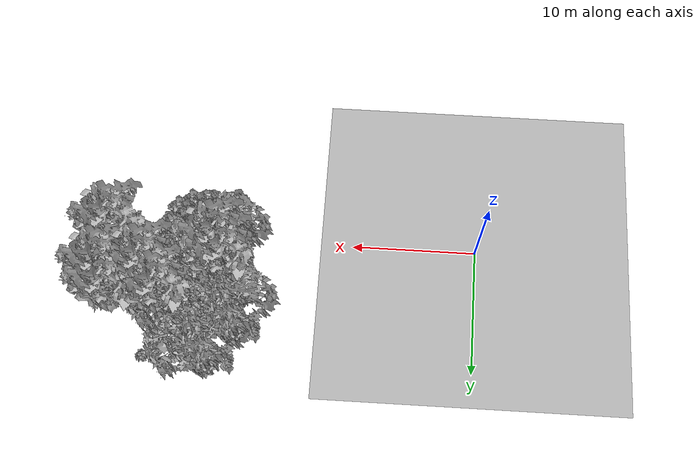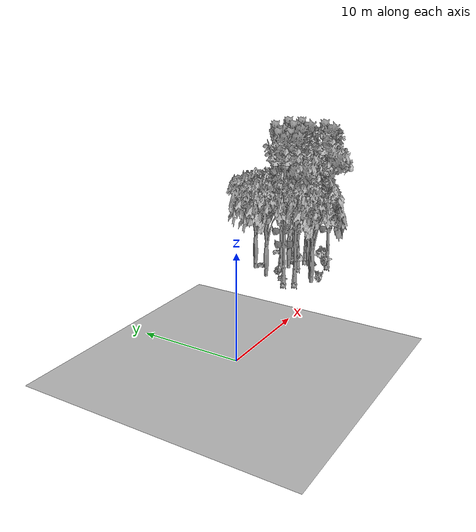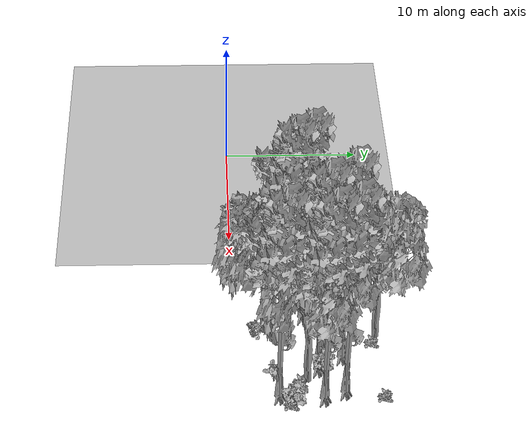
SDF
<sdf version="1.7">
 <world name="default">
  <model name="ground_plane">
   <static>1</static>
   <link name="link">
    <collision name="collision">
     <pose>-50 0 0 0 -0 0</pose>
     <geometry><plane><normal>0 0 1</normal><size>80 80</size></plane></geometry>
     <surface><contact><ode><min_depth>0.01</min_depth><max_vel>0</max_vel></ode></contact></surface>
    </collision>
    <visual name="grass">
     <cast_shadows>0</cast_shadows>
     <geometry>
      <mesh>
       <scale>0.46714285714285714 0.46714285714285714 0.1</scale>
       <uri>file://grass_plane/meshes/grass_plane.dae</uri>
      </mesh>
     </geometry>
    </visual>
   </link>
  </model>
  <model name="Tree 78">
   <static>1</static>
   <pose>19.57850787174562 2.1819683144084223 0 1.57079 -0 0</pose>
   <link name="link">
    <collision name="collision">
     <geometry><mesh><scale>3.5 5 3.5</scale><uri>model://tree_2/meshes/tree_2.obj</uri></mesh></geometry>
    </collision>
    <visual name="visual">
     <geometry><mesh><scale>3.5 5 3.5</scale><uri>model://tree_2/meshes/tree_2.obj</uri></mesh></geometry>
    </visual>
   </link>
  </model>
  <model name="Tree 220">
   <static>1</static>
   <pose>25.374835557188888 7.420376412419849 0 1.57079 -0 0</pose>
   <link name="link">
    <collision name="collision">
     <geometry><mesh><scale>3.5 5 3.5</scale><uri>model://tree_9/meshes/tree_9.obj</uri></mesh></geometry>
    </collision>
    <visual name="visual">
     <geometry><mesh><scale>3.5 5 3.5</scale><uri>model://tree_9/meshes/tree_9.obj</uri></mesh></geometry>
    </visual>
   </link>
  </model>
  <model name="Tree 230">
   <static>1</static>
   <pose>22.231989790387367 6.419882275593672 0 1.57079 -0 0</pose>
   <link name="link">
    <collision name="collision">
     <geometry><mesh><scale>3.5 5 3.5</scale><uri>model://tree_2/meshes/tree_2.obj</uri></mesh></geometry>
    </collision>
    <visual name="visual">
     <geometry><mesh><scale>3.5 5 3.5</scale><uri>model://tree_2/meshes/tree_2.obj</uri></mesh></geometry>
    </visual>
   </link>
  </model>
  <model name="Tree 236">
   <static>1</static>
   <pose>18.59419330156404 7.432156673500003 0 1.57079 -0 0</pose>
   <link name="link">
    <collision name="collision">
     <geometry><mesh><scale>3.5 5 3.5</scale><uri>model://tree_2/meshes/tree_2.obj</uri></mesh></geometry>
    </collision>
    <visual name="visual">
     <geometry><mesh><scale>3.5 5 3.5</scale><uri>model://tree_2/meshes/tree_2.obj</uri></mesh></geometry>
    </visual>
   </link>
  </model>
  <model name="Tree 254">
   <static>1</static>
   <pose>22.106544528280473 7.391239721826338 0 1.57079 -0 0</pose>
   <link name="link">
    <collision name="collision">
     <geometry><mesh><scale>3.5 5 3.5</scale><uri>model://tree_9/meshes/tree_9.obj</uri></mesh></geometry>
    </collision>
    <visual name="visual">
     <geometry><mesh><scale>3.5 5 3.5</scale><uri>model://tree_9/meshes/tree_9.obj</uri></mesh></geometry>
    </visual>
   </link>
  </model>
  <model name="Tree 295">
   <static>1</static>
   <pose>18.11179258989072 4.91171167254614 0 1.57079 -0 0</pose>
   <link name="link">
    <collision name="collision">
     <geometry><mesh><scale>3.5 5 3.5</scale><uri>model://tree_9/meshes/tree_9.obj</uri></mesh></geometry>
    </collision>
    <visual name="visual">
     <geometry><mesh><scale>3.5 5 3.5</scale><uri>model://tree_9/meshes/tree_9.obj</uri></mesh></geometry>
    </visual>
   </link>
  </model>
  <model name="Tree 425">
   <static>1</static>
   <pose>20.497685950811956 2.7519067320780124 0 1.57079 -0 0</pose>
   <link name="link">
    <collision name="collision">
     <geometry><mesh><scale>3.5 5 3.5</scale><uri>model://tree_2/meshes/tree_2.obj</uri></mesh></geometry>
    </collision>
    <visual name="visual">
     <geometry><mesh><scale>3.5 5 3.5</scale><uri>model://tree_2/meshes/tree_2.obj</uri></mesh></geometry>
    </visual>
   </link>
  </model>
  <model name="Tree 451">
   <static>1</static>
   <pose>25.938896929559547 6.009279566407528 0 1.57079 -0 0</pose>
   <link name="link">
    <collision name="collision">
     <geometry><mesh><scale>3.5 5 3.5</scale><uri>model://tree_9/meshes/tree_9.obj</uri></mesh></geometry>
    </collision>
    <visual name="visual">
     <geometry><mesh><scale>3.5 5 3.5</scale><uri>model://tree_9/meshes/tree_9.obj</uri></mesh></geometry>
    </visual>
   </link>
  </model>
  <model name="Tree 476">
   <static>1</static>
   <pose>20.23450660847712 9.792075579979382 0 1.57079 -0 0</pose>
   <link name="link">
    <collision name="collision">
     <geometry><mesh><scale>3.5 5 3.5</scale><uri>model://tree_2/meshes/tree_2.obj</uri></mesh></geometry>
    </collision>
    <visual name="visual">
     <geometry><mesh><scale>3.5 5 3.5</scale><uri>model://tree_2/meshes/tree_2.obj</uri></mesh></geometry>
    </visual>
   </link>
  </model>
  <model name="Tree 536">
   <static>1</static>
   <pose>18.74012546696529 3.842855992245063 0 1.57079 -0 0</pose>
   <link name="link">
    <collision name="collision">
     <geometry><mesh><scale>3.5 5 3.5</scale><uri>model://tree_9/meshes/tree_9.obj</uri></mesh></geometry>
    </collision>
    <visual name="visual">
     <geometry><mesh><scale>3.5 5 3.5</scale><uri>model://tree_9/meshes/tree_9.obj</uri></mesh></geometry>
    </visual>
   </link>
  </model>
  <model name="Tree 568">
   <static>1</static>
   <pose>25.706063210486477 3.002800633440117 0 1.57079 -0 0</pose>
   <link name="link">
    <collision name="collision">
     <geometry><mesh><scale>3.5 5 3.5</scale><uri>model://tree_9/meshes/tree_9.obj</uri></mesh></geometry>
    </collision>
    <visual name="visual">
     <geometry><mesh><scale>3.5 5 3.5</scale><uri>model://tree_9/meshes/tree_9.obj</uri></mesh></geometry>
    </visual>
   </link>
  </model>
  <model name="Tree 590">
   <static>1</static>
   <pose>24.378897208966038 4.927228202550808 0 1.57079 -0 0</pose>
   <link name="link">
    <collision name="collision">
     <geometry><mesh><scale>3.5 5 3.5</scale><uri>model://tree_2/meshes/tree_2.obj</uri></mesh></geometry>
    </collision>
    <visual name="visual">
     <geometry><mesh><scale>3.5 5 3.5</scale><uri>model://tree_2/meshes/tree_2.obj</uri></mesh></geometry>
    </visual>
   </link>
  </model>
  <model name="Tree 625">
   <static>1</static>
   <pose>23.24515560262985 5.719149693559885 0 1.57079 -0 0</pose>
   <link name="link">
    <collision name="collision">
     <geometry><mesh><scale>3.5 5 3.5</scale><uri>model://tree_9/meshes/tree_9.obj</uri></mesh></geometry>
    </collision>
    <visual name="visual">
     <geometry><mesh><scale>3.5 5 3.5</scale><uri>model://tree_9/meshes/tree_9.obj</uri></mesh></geometry>
    </visual>
   </link>
  </model>
  <model name="Bush 80">
   <static>1</static>
   <pose>26.67365552951034 3.770418981737656 0 1.57079 -0 0</pose>
   <link name="link">
    <collision name="collision">
     <geometry><mesh><scale>2 2 2</scale><uri>model://bush_2/meshes/bush_2.obj</uri></mesh></geometry>
     <surface><contact><collide_without_contact>false</collide_without_contact></contact></surface>
    </collision>
    <visual name="visual">
     <geometry><mesh><scale>2 2 2</scale><uri>model://bush_2/meshes/bush_2.obj</uri></mesh></geometry>
    </visual>
   </link>
  </model>
  <model name="Bush 111">
   <static>1</static>
   <pose>18.78863130056611 5.394286360992368 0 1.57079 -0 0</pose>
   <link name="link">
    <collision name="collision">
     <geometry><mesh><scale>2 2 2</scale><uri>model://bush_2/meshes/bush_2.obj</uri></mesh></geometry>
     <surface><contact><collide_without_contact>false</collide_without_contact></contact></surface>
    </collision>
    <visual name="visual">
     <geometry><mesh><scale>2 2 2</scale><uri>model://bush_2/meshes/bush_2.obj</uri></mesh></geometry>
    </visual>
   </link>
  </model>
  <model name="Bush 124">
   <static>1</static>
   <pose>26.526418562656133 3.900369047343723 0 1.57079 -0 0</pose>
   <link name="link">
    <collision name="collision">
     <geometry><mesh><scale>2 2 2</scale><uri>model://bush_1/meshes/bush_1.obj</uri></mesh></geometry>
     <surface><contact><collide_without_contact>false</collide_without_contact></contact></surface>
    </collision>
    <visual name="visual">
     <geometry><mesh><scale>2 2 2</scale><uri>model://bush_1/meshes/bush_1.obj</uri></mesh></geometry>
    </visual>
   </link>
  </model>
  <model name="Bush 184">
   <static>1</static>
   <pose>23.42136477623137 5.883323055271063 0 1.57079 -0 0</pose>
   <link name="link">
    <collision name="collision">
     <geometry><mesh><scale>2 2 2</scale><uri>model://bush_1/meshes/bush_1.obj</uri></mesh></geometry>
     <surface><contact><collide_without_contact>false</collide_without_contact></contact></surface>
    </collision>
    <visual name="visual">
     <geometry><mesh><scale>2 2 2</scale><uri>model://bush_1/meshes/bush_1.obj</uri></mesh></geometry>
    </visual>
   </link>
  </model>
  <model name="Bush 236">
   <static>1</static>
   <pose>24.614520358458975 4.4300262696363575 0 1.57079 -0 0</pose>
   <link name="link">
    <collision name="collision">
     <geometry><mesh><scale>2 2 2</scale><uri>model://bush_2/meshes/bush_2.obj</uri></mesh></geometry>
     <surface><contact><collide_without_contact>false</collide_without_contact></contact></surface>
    </collision>
    <visual name="visual">
     <geometry><mesh><scale>2 2 2</scale><uri>model://bush_2/meshes/bush_2.obj</uri></mesh></geometry>
    </visual>
   </link>
  </model>
  <model name="Bush 239">
   <static>1</static>
   <pose>26.035450399726088 9.983748194440878 0 1.57079 -0 0</pose>
   <link name="link">
    <collision name="collision">
     <geometry><mesh><scale>2 2 2</scale><uri>model://bush_2/meshes/bush_2.obj</uri></mesh></geometry>
     <surface><contact><collide_without_contact>false</collide_without_contact></contact></surface>
    </collision>
    <visual name="visual">
     <geometry><mesh><scale>2 2 2</scale><uri>model://bush_2/meshes/bush_2.obj</uri></mesh></geometry>
    </visual>
   </link>
  </model>
  <model name="Bush 322">
   <static>1</static>
   <pose>19.123260270559832 6.060456844284417 0 1.57079 -0 0</pose>
   <link name="link">
    <collision name="collision">
     <geometry><mesh><scale>2 2 2</scale><uri>model://bush_0/meshes/bush_0.obj</uri></mesh></geometry>
     <surface><contact><collide_without_contact>false</collide_without_contact></contact></surface>
    </collision>
    <visual name="visual">
     <geometry><mesh><scale>2 2 2</scale><uri>model://bush_0/meshes/bush_0.obj</uri></mesh></geometry>
    </visual>
   </link>
  </model>
  <model name="Bush 329">
   <static>1</static>
   <pose>24.4569966925013 2.7059332074034756 0 1.57079 -0 0</pose>
   <link name="link">
    <collision name="collision">
     <geometry><mesh><scale>2 2 2</scale><uri>model://bush_0/meshes/bush_0.obj</uri></mesh></geometry>
     <surface><contact><collide_without_contact>false</collide_without_contact></contact></surface>
    </collision>
    <visual name="visual">
     <geometry><mesh><scale>2 2 2</scale><uri>model://bush_0/meshes/bush_0.obj</uri></mesh></geometry>
    </visual>
   </link>
  </model>
  <model name="Bush 417">
   <static>1</static>
   <pose>20.949986458336824 9.496223802409105 0 1.57079 -0 0</pose>
   <link name="link">
    <collision name="collision">
     <geometry><mesh><scale>2 2 2</scale><uri>model://bush_2/meshes/bush_2.obj</uri></mesh></geometry>
     <surface><contact><collide_without_contact>false</collide_without_contact></contact></surface>
    </collision>
    <visual name="visual">
     <geometry><mesh><scale>2 2 2</scale><uri>model://bush_2/meshes/bush_2.obj</uri></mesh></geometry>
    </visual>
   </link>
  </model>
  <model name="Bush 535">
   <static>1</static>
   <pose>20.15543041603729 1.4907906657012475 0 1.57079 -0 0</pose>
   <link name="link">
    <collision name="collision">
     <geometry><mesh><scale>2 2 2</scale><uri>model://bush_4/meshes/bush_4.obj</uri></mesh></geometry>
     <surface><contact><collide_without_contact>false</collide_without_contact></contact></surface>
    </collision>
    <visual name="visual">
     <geometry><mesh><scale>2 2 2</scale><uri>model://bush_4/meshes/bush_4.obj</uri></mesh></geometry>
    </visual>
   </link>
  </model>
 </world>
</sdf>
